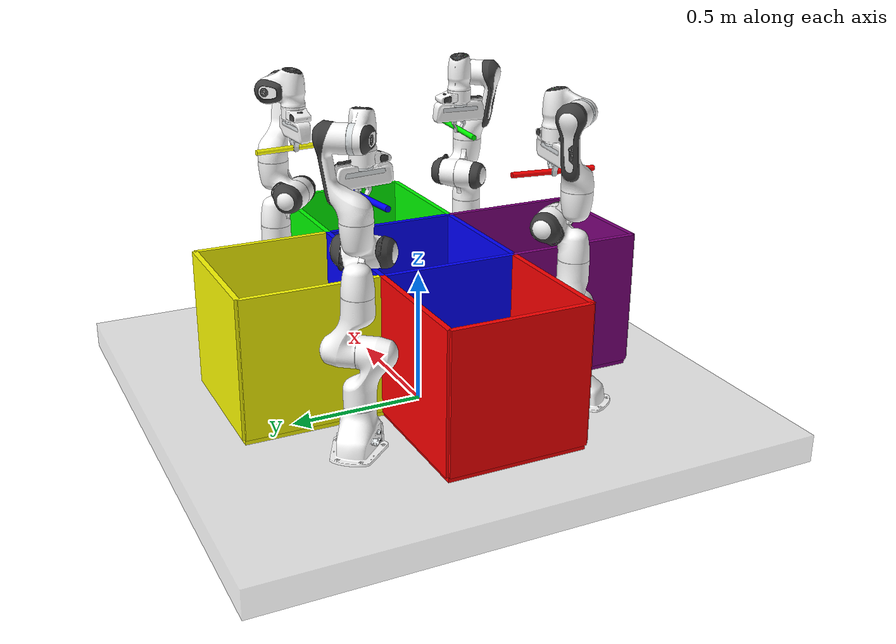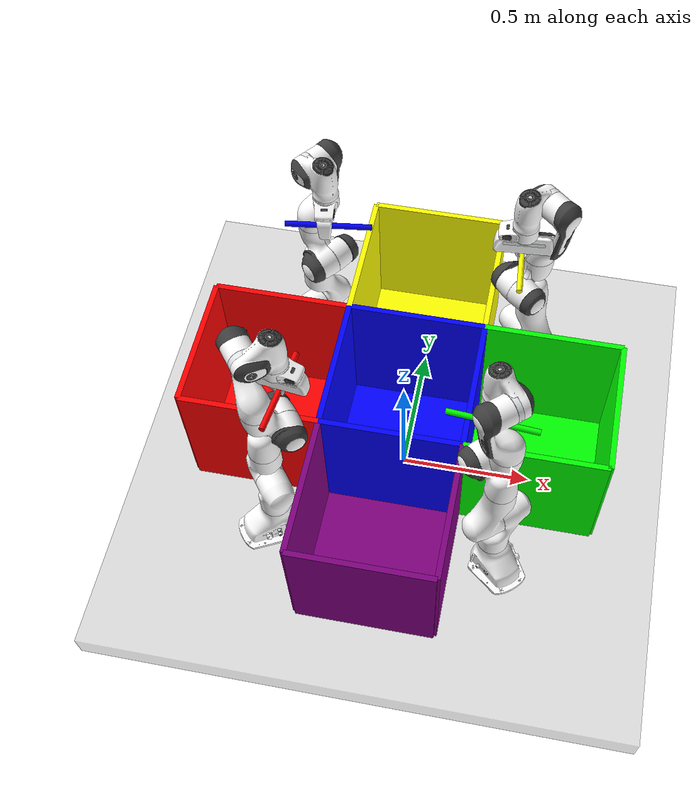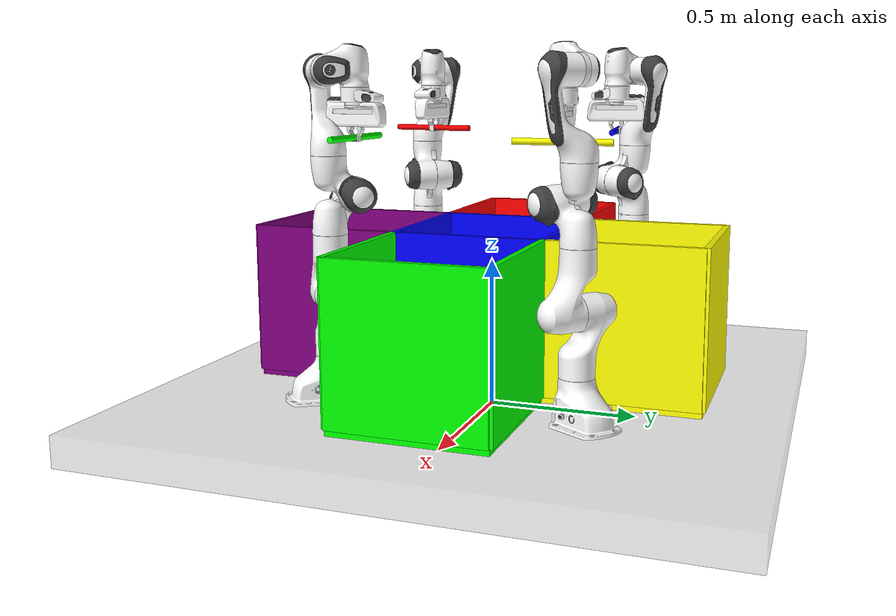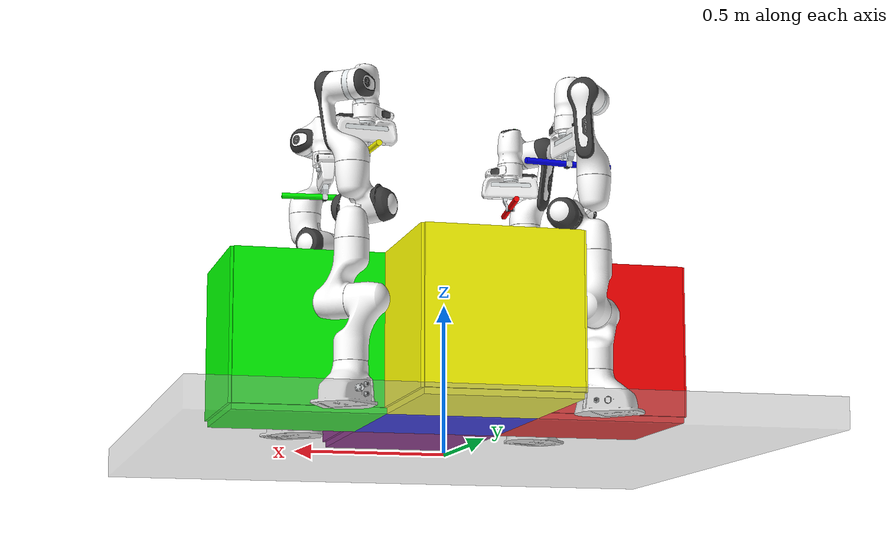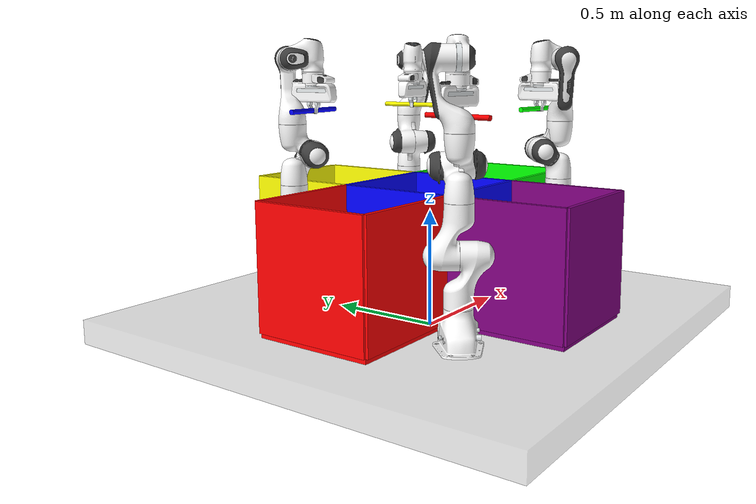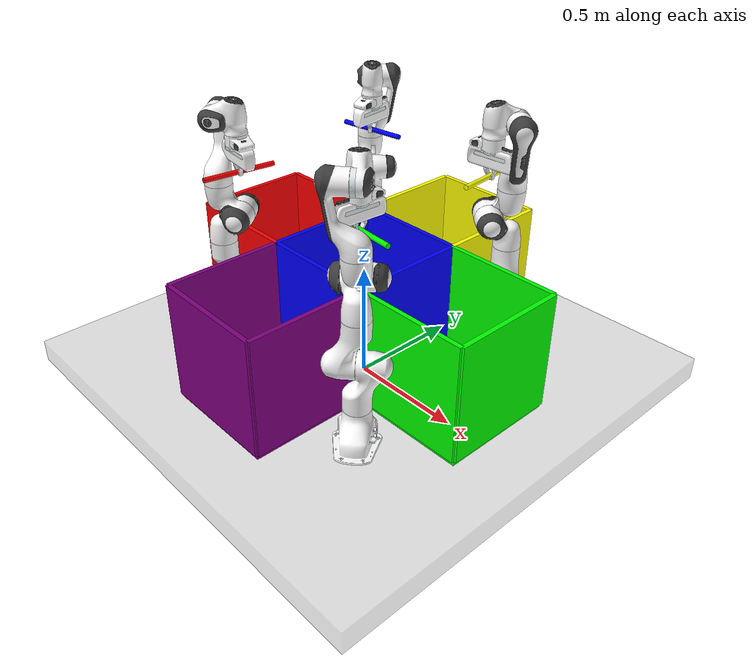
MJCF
<mujoco model="panda_four_bins">
  <compiler angle="radian" meshdir="assets" autolimits="true"/>

  <option integrator="implicitfast"/>

  <default>
    <default class="panda">
      <material specular="0.5" shininess="0.25"/>
      <joint armature="0.1" damping="1" axis="0 0 1" range="-2.8973 2.8973"/>
      <general dyntype="none" biastype="affine" ctrlrange="-2.8973 2.8973" forcerange="-87 87"/>
      <default class="finger">
        <joint axis="0 1 0" type="slide" range="0 0.04"/>
      </default>

      <default class="visual">
        <geom type="mesh" contype="0" conaffinity="0" group="2"/>
      </default>
      <default class="collision">
        <geom type="mesh" group="3"/>
        <default class="fingertip_pad_collision_1">
          <geom type="box" size="0.0085 0.004 0.0085" pos="0 0.0055 0.0445"/>
        </default>
        <default class="fingertip_pad_collision_2">
          <geom type="box" size="0.003 0.002 0.003" pos="0.0055 0.002 0.05"/>
        </default>
        <default class="fingertip_pad_collision_3">
          <geom type="box" size="0.003 0.002 0.003" pos="-0.0055 0.002 0.05"/>
        </default>
        <default class="fingertip_pad_collision_4">
          <geom type="box" size="0.003 0.002 0.0035" pos="0.0055 0.002 0.0395"/>
        </default>
        <default class="fingertip_pad_collision_5">
          <geom type="box" size="0.003 0.002 0.0035" pos="-0.0055 0.002 0.0395"/>
        </default>
      </default>
    </default>
  </default>

  <asset>
    <material class="panda" name="white" rgba="1 1 1 1"/>
    <material class="panda" name="off_white" rgba="0.901961 0.921569 0.929412 1"/>
    <material class="panda" name="black" rgba="0.25 0.25 0.25 1"/>
    <material class="panda" name="green" rgba="0 1 0 1"/>
    <material class="panda" name="light_blue" rgba="0.039216 0.541176 0.780392 1"/>

    <!-- Collision meshes -->
    <mesh name="link0_c" file="link0.stl"/>
    <mesh name="link1_c" file="link1.stl"/>
    <mesh name="link2_c" file="link2.stl"/>
    <mesh name="link3_c" file="link3.stl"/>
    <mesh name="link4_c" file="link4.stl"/>
    <mesh name="link5_c0" file="link5_collision_0.obj"/>
    <mesh name="link5_c1" file="link5_collision_1.obj"/>
    <mesh name="link5_c2" file="link5_collision_2.obj"/>
    <mesh name="link6_c" file="link6.stl"/>
    <mesh name="link7_c" file="link7.stl"/>
    <mesh name="hand_c" file="hand.stl"/>

    <!-- Visual meshes (list shortened to avoid duplication) -->
    <mesh file="link0_0.obj"/>
    <mesh file="link0_1.obj"/>
    <mesh file="link0_2.obj"/>
    <mesh file="link0_3.obj"/>
    <mesh file="link0_4.obj"/>
    <mesh file="link0_5.obj"/>
    <mesh file="link0_7.obj"/>
    <mesh file="link0_8.obj"/>
    <mesh file="link0_9.obj"/>
    <mesh file="link0_10.obj"/>
    <mesh file="link0_11.obj"/>
    <mesh file="link1.obj"/>
    <mesh file="link2.obj"/>
    <mesh file="link3_0.obj"/>
    <mesh file="link3_1.obj"/>
    <mesh file="link3_2.obj"/>
    <mesh file="link3_3.obj"/>
    <mesh file="link4_0.obj"/>
    <mesh file="link4_1.obj"/>
    <mesh file="link4_2.obj"/>
    <mesh file="link4_3.obj"/>
    <mesh file="link5_0.obj"/>
    <mesh file="link5_1.obj"/>
    <mesh file="link5_2.obj"/>
    <mesh file="link6_0.obj"/>
    <mesh file="link6_1.obj"/>
    <mesh file="link6_2.obj"/>
    <mesh file="link6_3.obj"/>
    <mesh file="link6_4.obj"/>
    <mesh file="link6_5.obj"/>
    <mesh file="link6_6.obj"/>
    <mesh file="link6_7.obj"/>
    <mesh file="link6_8.obj"/>
    <mesh file="link6_9.obj"/>
    <mesh file="link6_10.obj"/>
    <mesh file="link6_11.obj"/>
    <mesh file="link6_12.obj"/>
    <mesh file="link6_13.obj"/>
    <mesh file="link6_14.obj"/>
    <mesh file="link6_15.obj"/>
    <mesh file="link6_16.obj"/>
    <mesh file="link7_0.obj"/>
    <mesh file="link7_1.obj"/>
    <mesh file="link7_2.obj"/>
    <mesh file="link7_3.obj"/>
    <mesh file="link7_4.obj"/>
    <mesh file="link7_5.obj"/>
    <mesh file="link7_6.obj"/>
    <mesh file="link7_7.obj"/>
    <mesh file="hand_0.obj"/>
    <mesh file="hand_1.obj"/>
    <mesh file="hand_2.obj"/>
    <mesh file="hand_3.obj"/>
    <mesh file="hand_4.obj"/>
    <mesh file="finger_0.obj"/>
    <mesh file="finger_1.obj"/>
  </asset>

  <!-- We'll spawn four robot instances by copying only the body subtrees and giving each instance a unique prefix. -->

  <visual>
    <headlight diffuse="0.6 0.6 0.6" ambient="0.3 0.3 0.3" specular="0 0 0"/>
    <rgba haze="0.15 0.25 0.35 1"/>
    <global azimuth="120" elevation="-20"/>
  </visual>

  <worldbody>
    <light pos="0 0 2" mode="trackcom"/>

    <!-- Work surface and bins lifted directly from panda_four_binpick MoveIt scene -->
    <geom name="table" type="box" size="1 1 0.05" pos="0 0 0.05" rgba="0.7 0.7 0.7 0.4" friction="1 0.1 0.01"/>

    <!-- Helper macro from xacro expands into a bottom plate plus four sides; we mirror it explicitly here -->
    <body name="box1" pos="0 0 0.11">
      <geom name="box1_bottom" type="box" size="0.25 0.25 0.01" rgba="0 0 1 1"/>
      <geom name="box1_front" type="box" size="0.25 0.01 0.25" pos="0 0.25 0.26" rgba="0 0 1 1"/>
      <geom name="box1_back" type="box" size="0.25 0.01 0.25" pos="0 -0.25 0.26" rgba="0 0 1 1"/>
      <geom name="box1_left" type="box" size="0.01 0.25 0.25" pos="-0.25 0 0.26" rgba="0 0 1 1"/>
      <geom name="box1_right" type="box" size="0.01 0.25 0.25" pos="0.25 0 0.26" rgba="0 0 1 1"/>
    </body>
    <body name="box2" pos="0.5 0 0.11">
      <geom name="box2_bottom" type="box" size="0.25 0.25 0.01" rgba="0 1 0 1"/>
      <geom name="box2_front" type="box" size="0.25 0.01 0.25" pos="0 0.25 0.26" rgba="0 1 0 1"/>
      <geom name="box2_back" type="box" size="0.25 0.01 0.25" pos="0 -0.25 0.26" rgba="0 1 0 1"/>
      <geom name="box2_left" type="box" size="0.01 0.25 0.25" pos="-0.25 0 0.26" rgba="0 1 0 1"/>
      <geom name="box2_right" type="box" size="0.01 0.25 0.25" pos="0.25 0 0.26" rgba="0 1 0 1"/>
    </body>
    <body name="box3" pos="-0.5 0 0.11">
      <geom name="box3_bottom" type="box" size="0.25 0.25 0.01" rgba="1 0 0 1"/>
      <geom name="box3_front" type="box" size="0.25 0.01 0.25" pos="0 0.25 0.26" rgba="1 0 0 1"/>
      <geom name="box3_back" type="box" size="0.25 0.01 0.25" pos="0 -0.25 0.26" rgba="1 0 0 1"/>
      <geom name="box3_left" type="box" size="0.01 0.25 0.25" pos="-0.25 0 0.26" rgba="1 0 0 1"/>
      <geom name="box3_right" type="box" size="0.01 0.25 0.25" pos="0.25 0 0.26" rgba="1 0 0 1"/>
    </body>
    <body name="box4" pos="0 0.5 0.11">
      <geom name="box4_bottom" type="box" size="0.25 0.25 0.01" rgba="1 1 0 1"/>
      <geom name="box4_front" type="box" size="0.25 0.01 0.25" pos="0 0.25 0.26" rgba="1 1 0 1"/>
      <geom name="box4_back" type="box" size="0.25 0.01 0.25" pos="0 -0.25 0.26" rgba="1 1 0 1"/>
      <geom name="box4_left" type="box" size="0.01 0.25 0.25" pos="-0.25 0 0.26" rgba="1 1 0 1"/>
      <geom name="box4_right" type="box" size="0.01 0.25 0.25" pos="0.25 0 0.26" rgba="1 1 0 1"/>
    </body>
    <body name="box5" pos="0 -0.5 0.11">
      <geom name="box5_bottom" type="box" size="0.25 0.25 0.01" rgba="0.5 0 0.5 1"/>
      <geom name="box5_front" type="box" size="0.25 0.01 0.25" pos="0 0.25 0.26" rgba="0.5 0 0.5 1"/>
      <geom name="box5_back" type="box" size="0.25 0.01 0.25" pos="0 -0.25 0.26" rgba="0.5 0 0.5 1"/>
      <geom name="box5_left" type="box" size="0.01 0.25 0.25" pos="-0.25 0 0.26" rgba="0.5 0 0.5 1"/>
      <geom name="box5_right" type="box" size="0.01 0.25 0.25" pos="0.25 0 0.26" rgba="0.5 0 0.5 1"/>
    </body>

    <!-- Four Panda arms mounted on the corners of the central worktable -->
    <!-- panda1: MoveIt arm_id_0 at (0.4, -0.4, 0.1) yaw 2.28 rad -->
    <body name="panda1_link0" childclass="panda" pos="0.4 -0.4 0.1" quat="0.4175945 0 0 0.9086335">
      <inertial mass="0.629769" pos="-0.041018 -0.00014 0.049974" fullinertia="0.00315 0.00388 0.004285 8.2904e-7 0.00015 8.2299e-6"/>
      <geom mesh="link0_0" material="off_white" class="visual"/>
      <geom mesh="link0_1" material="black" class="visual"/>
      <geom mesh="link0_2" material="off_white" class="visual"/>
      <geom mesh="link0_3" material="black" class="visual"/>
      <geom mesh="link0_4" material="off_white" class="visual"/>
      <geom mesh="link0_5" material="black" class="visual"/>
      <geom mesh="link0_7" material="white" class="visual"/>
      <geom mesh="link0_8" material="white" class="visual"/>
      <geom mesh="link0_9" material="black" class="visual"/>
      <geom mesh="link0_10" material="off_white" class="visual"/>
      <geom mesh="link0_11" material="white" class="visual"/>
      <geom mesh="link0_c" class="collision"/>
      <body name="panda1_link1" pos="0 0 0.333">
        <inertial mass="4.970684" pos="0.003875 0.002081 -0.04762" fullinertia="0.70337 0.70661 0.0091170 -0.00013900 0.0067720 0.019169"/>
        <joint name="panda1_joint1"/>
        <geom material="white" mesh="link1" class="visual"/>
        <geom mesh="link1_c" class="collision"/>
        <body name="panda1_link2" quat="1 -1 0 0">
          <inertial mass="0.646926" pos="-0.003141 -0.02872 0.003495" fullinertia="0.0079620 2.8110e-2 2.5995e-2 -3.925e-3 1.0254e-2 7.04e-4"/>
          <joint name="panda1_joint2" range="-1.7628 1.7628"/>
          <geom material="white" mesh="link2" class="visual"/>
          <geom mesh="link2_c" class="collision"/>
          <body name="panda1_link3" pos="0 -0.316 0" quat="1 1 0 0">
            <joint name="panda1_joint3"/>
            <inertial mass="3.228604" pos="2.7518e-2 3.9252e-2 -6.6502e-2" fullinertia="3.7242e-2 3.6155e-2 1.083e-2 -4.761e-3 -1.1396e-2 -1.2805e-2"/>
            <geom mesh="link3_0" material="white" class="visual"/>
            <geom mesh="link3_1" material="white" class="visual"/>
            <geom mesh="link3_2" material="white" class="visual"/>
            <geom mesh="link3_3" material="black" class="visual"/>
            <geom mesh="link3_c" class="collision"/>
            <body name="panda1_link4" pos="0.0825 0 0" quat="1 1 0 0">
              <joint name="panda1_joint4" range="-3.0718 -0.0698"/>
              <inertial mass="3.587895" pos="-5.317e-2 1.04419e-1 2.7454e-2" fullinertia="2.5853e-2 1.9552e-2 2.8323e-2 7.796e-3 -1.332e-3 8.641e-3"/>
              <geom mesh="link4_0" material="white" class="visual"/>
              <geom mesh="link4_1" material="white" class="visual"/>
              <geom mesh="link4_2" material="black" class="visual"/>
              <geom mesh="link4_3" material="white" class="visual"/>
              <geom mesh="link4_c" class="collision"/>
              <body name="panda1_link5" pos="-0.0825 0.384 0" quat="1 -1 0 0">
                <joint name="panda1_joint5"/>
                <inertial mass="1.225946" pos="-1.1953e-2 4.1065e-2 -3.8437e-2" fullinertia="3.5549e-2 2.9474e-2 8.627e-3 -2.117e-3 -4.037e-3 2.29e-4"/>
                <geom mesh="link5_0" material="black" class="visual"/>
                <geom mesh="link5_1" material="white" class="visual"/>
                <geom mesh="link5_2" material="white" class="visual"/>
                <geom mesh="link5_c0" class="collision"/>
                <geom mesh="link5_c1" class="collision"/>
                <geom mesh="link5_c2" class="collision"/>
                <body name="panda1_link6" quat="1 1 0 0">
                  <joint name="panda1_joint6" range="-0.0175 3.7525"/>
                  <inertial mass="1.666555" pos="6.0149e-2 -1.4117e-2 -1.0517e-2" fullinertia="1.964e-3 4.354e-3 5.433e-3 1.09e-4 -1.158e-3 3.41e-4"/>
                  <geom mesh="link6_0" material="off_white" class="visual"/>
                  <geom mesh="link6_1" material="white" class="visual"/>
                  <geom mesh="link6_2" material="black" class="visual"/>
                  <geom mesh="link6_3" material="white" class="visual"/>
                  <geom mesh="link6_4" material="white" class="visual"/>
                  <geom mesh="link6_5" material="white" class="visual"/>
                  <geom mesh="link6_6" material="white" class="visual"/>
                  <geom mesh="link6_7" material="light_blue" class="visual"/>
                  <geom mesh="link6_8" material="light_blue" class="visual"/>
                  <geom mesh="link6_9" material="black" class="visual"/>
                  <geom mesh="link6_10" material="black" class="visual"/>
                  <geom mesh="link6_11" material="white" class="visual"/>
                  <geom mesh="link6_12" material="green" class="visual"/>
                  <geom mesh="link6_13" material="white" class="visual"/>
                  <geom mesh="link6_14" material="black" class="visual"/>
                  <geom mesh="link6_15" material="black" class="visual"/>
                  <geom mesh="link6_16" material="white" class="visual"/>
                  <geom mesh="link6_c" class="collision"/>
                  <body name="panda1_link7" pos="0.088 0 0" quat="1 1 0 0">
                    <joint name="panda1_joint7"/>
                    <inertial mass="7.35522e-01" pos="1.0517e-2 -4.252e-3 6.1597e-2" fullinertia="1.2516e-2 1.0027e-2 4.815e-3 -4.28e-4 -1.196e-3 -7.41e-4"/>
                    <geom mesh="link7_0" material="white" class="visual"/>
                    <geom mesh="link7_1" material="black" class="visual"/>
                    <geom mesh="link7_2" material="black" class="visual"/>
                    <geom mesh="link7_3" material="black" class="visual"/>
                    <geom mesh="link7_4" material="black" class="visual"/>
                    <geom mesh="link7_5" material="black" class="visual"/>
                    <geom mesh="link7_6" material="black" class="visual"/>
                    <geom mesh="link7_7" material="white" class="visual"/>
                    <geom mesh="link7_c" class="collision"/>
                    <body name="panda1_hand" pos="0 0 0.107" quat="0.9238795 0 0 -0.3826834">
                      <inertial mass="0.73" pos="-0.01 0 0.03" diaginertia="0.001 0.0025 0.0017"/>
                      <geom mesh="hand_0" material="off_white" class="visual"/>
                      <geom mesh="hand_1" material="black" class="visual"/>
                      <geom mesh="hand_2" material="black" class="visual"/>
                      <geom mesh="hand_3" material="white" class="visual"/>
                      <geom mesh="hand_4" material="off_white" class="visual"/>
                      <geom mesh="hand_c" class="collision"/>
                      <body name="panda1_left_finger" pos="0 0 0.0584">
                        <inertial mass="0.015" pos="0 0 0" diaginertia="2.375e-6 2.375e-6 7.5e-7"/>
                        <joint name="panda1_finger_joint1" class="finger"/>
                        <geom mesh="finger_0" material="off_white" class="visual"/>
                        <geom mesh="finger_1" material="black" class="visual"/>
                        <geom mesh="finger_0" class="collision"/>
                        <geom class="fingertip_pad_collision_1"/>
                        <geom class="fingertip_pad_collision_2"/>
                        <geom class="fingertip_pad_collision_3"/>
                        <geom class="fingertip_pad_collision_4"/>
                        <geom class="fingertip_pad_collision_5"/>
                      </body>
                      <body name="panda1_right_finger" pos="0 0 0.0584" quat="0 0 0 1">
                        <inertial mass="0.015" pos="0 0 0" diaginertia="2.375e-6 2.375e-6 7.5e-7"/>
                        <joint name="panda1_finger_joint2" class="finger"/>
                        <geom mesh="finger_0" material="off_white" class="visual"/>
                        <geom mesh="finger_1" material="black" class="visual"/>
                        <geom mesh="finger_0" class="collision"/>
                        <geom class="fingertip_pad_collision_1"/>
                        <geom class="fingertip_pad_collision_2"/>
                        <geom class="fingertip_pad_collision_3"/>
                        <geom class="fingertip_pad_collision_4"/>
                        <geom class="fingertip_pad_collision_5"/>
                      </body>
                      <body name="panda1_rod" pos="0 0 0.1" quat="0.7071068 0 0.7071068 0">
                        <geom name="panda1_rod_geom" type="cylinder" size="0.01 0.15" rgba="0 1 0 1"/>
                      </body>
                    </body>
                  </body>
                </body>
              </body>
            </body>
          </body>
        </body>
      </body>
    </body>

    <!-- panda2: MoveIt arm_id_1 at (-0.4, -0.4, 0.1) yaw 0.66 rad -->
    <body name="panda2_link0" childclass="panda" pos="-0.4 -0.4 0.1" quat="0.9460423 0 0 0.3240430">
      <inertial mass="0.629769" pos="-0.041018 -0.00014 0.049974" fullinertia="0.00315 0.00388 0.004285 8.2904e-7 0.00015 8.2299e-6"/>
      <geom mesh="link0_0" material="off_white" class="visual"/>
      <geom mesh="link0_1" material="black" class="visual"/>
      <geom mesh="link0_2" material="off_white" class="visual"/>
      <geom mesh="link0_3" material="black" class="visual"/>
      <geom mesh="link0_4" material="off_white" class="visual"/>
      <geom mesh="link0_5" material="black" class="visual"/>
      <geom mesh="link0_7" material="white" class="visual"/>
      <geom mesh="link0_8" material="white" class="visual"/>
      <geom mesh="link0_9" material="black" class="visual"/>
      <geom mesh="link0_10" material="off_white" class="visual"/>
      <geom mesh="link0_11" material="white" class="visual"/>
      <geom mesh="link0_c" class="collision"/>
      <body name="panda2_link1" pos="0 0 0.333">
        <inertial mass="4.970684" pos="0.003875 0.002081 -0.04762" fullinertia="0.70337 0.70661 0.0091170 -0.00013900 0.0067720 0.019169"/>
        <joint name="panda2_joint1"/>
        <geom material="white" mesh="link1" class="visual"/>
        <geom mesh="link1_c" class="collision"/>
        <body name="panda2_link2" quat="1 -1 0 0">
          <inertial mass="0.646926" pos="-0.003141 -0.02872 0.003495" fullinertia="0.0079620 2.8110e-2 2.5995e-2 -3.925e-3 1.0254e-2 7.04e-4"/>
          <joint name="panda2_joint2" range="-1.7628 1.7628"/>
          <geom material="white" mesh="link2" class="visual"/>
          <geom mesh="link2_c" class="collision"/>
          <body name="panda2_link3" pos="0 -0.316 0" quat="1 1 0 0">
            <joint name="panda2_joint3"/>
            <inertial mass="3.228604" pos="2.7518e-2 3.9252e-2 -6.6502e-2" fullinertia="3.7242e-2 3.6155e-2 1.083e-2 -4.761e-3 -1.1396e-2 -1.2805e-2"/>
            <geom mesh="link3_0" material="white" class="visual"/>
            <geom mesh="link3_1" material="white" class="visual"/>
            <geom mesh="link3_2" material="white" class="visual"/>
            <geom mesh="link3_3" material="black" class="visual"/>
            <geom mesh="link3_c" class="collision"/>
            <body name="panda2_link4" pos="0.0825 0 0" quat="1 1 0 0">
              <joint name="panda2_joint4" range="-3.0718 -0.0698"/>
              <inertial mass="3.587895" pos="-5.317e-2 1.04419e-1 2.7454e-2" fullinertia="2.5853e-2 1.9552e-2 2.8323e-2 7.796e-3 -1.332e-3 8.641e-3"/>
              <geom mesh="link4_0" material="white" class="visual"/>
              <geom mesh="link4_1" material="white" class="visual"/>
              <geom mesh="link4_2" material="black" class="visual"/>
              <geom mesh="link4_3" material="white" class="visual"/>
              <geom mesh="link4_c" class="collision"/>
              <body name="panda2_link5" pos="-0.0825 0.384 0" quat="1 -1 0 0">
                <joint name="panda2_joint5"/>
                <inertial mass="1.225946" pos="-1.1953e-2 4.1065e-2 -3.8437e-2" fullinertia="3.5549e-2 2.9474e-2 8.627e-3 -2.117e-3 -4.037e-3 2.29e-4"/>
                <geom mesh="link5_0" material="black" class="visual"/>
                <geom mesh="link5_1" material="white" class="visual"/>
                <geom mesh="link5_2" material="white" class="visual"/>
                <geom mesh="link5_c0" class="collision"/>
                <geom mesh="link5_c1" class="collision"/>
                <geom mesh="link5_c2" class="collision"/>
                <body name="panda2_link6" quat="1 1 0 0">
                  <joint name="panda2_joint6" range="-0.0175 3.7525"/>
                  <inertial mass="1.666555" pos="6.0149e-2 -1.4117e-2 -1.0517e-2" fullinertia="1.964e-3 4.354e-3 5.433e-3 1.09e-4 -1.158e-3 3.41e-4"/>
                  <geom mesh="link6_0" material="off_white" class="visual"/>
                  <geom mesh="link6_1" material="white" class="visual"/>
                  <geom mesh="link6_2" material="black" class="visual"/>
                  <geom mesh="link6_3" material="white" class="visual"/>
                  <geom mesh="link6_4" material="white" class="visual"/>
                  <geom mesh="link6_5" material="white" class="visual"/>
                  <geom mesh="link6_6" material="white" class="visual"/>
                  <geom mesh="link6_7" material="light_blue" class="visual"/>
                  <geom mesh="link6_8" material="light_blue" class="visual"/>
                  <geom mesh="link6_9" material="black" class="visual"/>
                  <geom mesh="link6_10" material="black" class="visual"/>
                  <geom mesh="link6_11" material="white" class="visual"/>
                  <geom mesh="link6_12" material="green" class="visual"/>
                  <geom mesh="link6_13" material="white" class="visual"/>
                  <geom mesh="link6_14" material="black" class="visual"/>
                  <geom mesh="link6_15" material="black" class="visual"/>
                  <geom mesh="link6_16" material="white" class="visual"/>
                  <geom mesh="link6_c" class="collision"/>
                  <body name="panda2_link7" pos="0.088 0 0" quat="1 1 0 0">
                    <joint name="panda2_joint7"/>
                    <inertial mass="7.35522e-01" pos="1.0517e-2 -4.252e-3 6.1597e-2" fullinertia="1.2516e-2 1.0027e-2 4.815e-3 -4.28e-4 -1.196e-3 -7.41e-4"/>
                    <geom mesh="link7_0" material="white" class="visual"/>
                    <geom mesh="link7_1" material="black" class="visual"/>
                    <geom mesh="link7_2" material="black" class="visual"/>
                    <geom mesh="link7_3" material="black" class="visual"/>
                    <geom mesh="link7_4" material="black" class="visual"/>
                    <geom mesh="link7_5" material="black" class="visual"/>
                    <geom mesh="link7_6" material="black" class="visual"/>
                    <geom mesh="link7_7" material="white" class="visual"/>
                    <geom mesh="link7_c" class="collision"/>
                    <body name="panda2_hand" pos="0 0 0.107" quat="0.9238795 0 0 -0.3826834">
                      <inertial mass="0.73" pos="-0.01 0 0.03" diaginertia="0.001 0.0025 0.0017"/>
                      <geom mesh="hand_0" material="off_white" class="visual"/>
                      <geom mesh="hand_1" material="black" class="visual"/>
                      <geom mesh="hand_2" material="black" class="visual"/>
                      <geom mesh="hand_3" material="white" class="visual"/>
                      <geom mesh="hand_4" material="off_white" class="visual"/>
                      <geom mesh="hand_c" class="collision"/>
                      <body name="panda2_left_finger" pos="0 0 0.0584">
                        <inertial mass="0.015" pos="0 0 0" diaginertia="2.375e-6 2.375e-6 7.5e-7"/>
                        <joint name="panda2_finger_joint1" class="finger"/>
                        <geom mesh="finger_0" material="off_white" class="visual"/>
                        <geom mesh="finger_1" material="black" class="visual"/>
                        <geom mesh="finger_0" class="collision"/>
                        <geom class="fingertip_pad_collision_1"/>
                        <geom class="fingertip_pad_collision_2"/>
                        <geom class="fingertip_pad_collision_3"/>
                        <geom class="fingertip_pad_collision_4"/>
                        <geom class="fingertip_pad_collision_5"/>
                      </body>
                      <body name="panda2_right_finger" pos="0 0 0.0584" quat="0 0 0 1">
                        <inertial mass="0.015" pos="0 0 0" diaginertia="2.375e-6 2.375e-6 7.5e-7"/>
                        <joint name="panda2_finger_joint2" class="finger"/>
                        <geom mesh="finger_0" material="off_white" class="visual"/>
                        <geom mesh="finger_1" material="black" class="visual"/>
                        <geom mesh="finger_0" class="collision"/>
                        <geom class="fingertip_pad_collision_1"/>
                        <geom class="fingertip_pad_collision_2"/>
                        <geom class="fingertip_pad_collision_3"/>
                        <geom class="fingertip_pad_collision_4"/>
                        <geom class="fingertip_pad_collision_5"/>
                      </body>
                      <body name="panda2_rod" pos="0 0 0.1" quat="0.7071068 0 0.7071068 0">
                        <geom name="panda2_rod_geom" type="cylinder" size="0.01 0.15" rgba="1 0 0 1"/>
                      </body>
                    </body>
                  </body>
                </body>
              </body>
            </body>
          </body>
        </body>
      </body>
    </body>

    <!-- panda3: MoveIt arm_id_2 at (-0.4, 0.4, 0.1) yaw -0.66 rad -->
    <body name="panda3_link0" childclass="panda" pos="-0.4 0.4 0.1" quat="0.9460423 0 0 -0.3240430">
      <inertial mass="0.629769" pos="-0.041018 -0.00014 0.049974" fullinertia="0.00315 0.00388 0.004285 8.2904e-7 0.00015 8.2299e-6"/>
      <geom mesh="link0_0" material="off_white" class="visual"/>
      <geom mesh="link0_1" material="black" class="visual"/>
      <geom mesh="link0_2" material="off_white" class="visual"/>
      <geom mesh="link0_3" material="black" class="visual"/>
      <geom mesh="link0_4" material="off_white" class="visual"/>
      <geom mesh="link0_5" material="black" class="visual"/>
      <geom mesh="link0_7" material="white" class="visual"/>
      <geom mesh="link0_8" material="white" class="visual"/>
      <geom mesh="link0_9" material="black" class="visual"/>
      <geom mesh="link0_10" material="off_white" class="visual"/>
      <geom mesh="link0_11" material="white" class="visual"/>
      <geom mesh="link0_c" class="collision"/>
      <body name="panda3_link1" pos="0 0 0.333">
        <inertial mass="4.970684" pos="0.003875 0.002081 -0.04762" fullinertia="0.70337 0.70661 0.0091170 -0.00013900 0.0067720 0.019169"/>
        <joint name="panda3_joint1"/>
        <geom material="white" mesh="link1" class="visual"/>
        <geom mesh="link1_c" class="collision"/>
        <body name="panda3_link2" quat="1 -1 0 0">
          <inertial mass="0.646926" pos="-0.003141 -0.02872 0.003495" fullinertia="0.0079620 2.8110e-2 2.5995e-2 -3.925e-3 1.0254e-2 7.04e-4"/>
          <joint name="panda3_joint2" range="-1.7628 1.7628"/>
          <geom material="white" mesh="link2" class="visual"/>
          <geom mesh="link2_c" class="collision"/>
          <body name="panda3_link3" pos="0 -0.316 0" quat="1 1 0 0">
            <joint name="panda3_joint3"/>
            <inertial mass="3.228604" pos="2.7518e-2 3.9252e-2 -6.6502e-2" fullinertia="3.7242e-2 3.6155e-2 1.083e-2 -4.761e-3 -1.1396e-2 -1.2805e-2"/>
            <geom mesh="link3_0" material="white" class="visual"/>
            <geom mesh="link3_1" material="white" class="visual"/>
            <geom mesh="link3_2" material="white" class="visual"/>
            <geom mesh="link3_3" material="black" class="visual"/>
            <geom mesh="link3_c" class="collision"/>
            <body name="panda3_link4" pos="0.0825 0 0" quat="1 1 0 0">
              <joint name="panda3_joint4" range="-3.0718 -0.0698"/>
              <inertial mass="3.587895" pos="-5.317e-2 1.04419e-1 2.7454e-2" fullinertia="2.5853e-2 1.9552e-2 2.8323e-2 7.796e-3 -1.332e-3 8.641e-3"/>
              <geom mesh="link4_0" material="white" class="visual"/>
              <geom mesh="link4_1" material="white" class="visual"/>
              <geom mesh="link4_2" material="black" class="visual"/>
              <geom mesh="link4_3" material="white" class="visual"/>
              <geom mesh="link4_c" class="collision"/>
              <body name="panda3_link5" pos="-0.0825 0.384 0" quat="1 -1 0 0">
                <joint name="panda3_joint5"/>
                <inertial mass="1.225946" pos="-1.1953e-2 4.1065e-2 -3.8437e-2" fullinertia="3.5549e-2 2.9474e-2 8.627e-3 -2.117e-3 -4.037e-3 2.29e-4"/>
                <geom mesh="link5_0" material="black" class="visual"/>
                <geom mesh="link5_1" material="white" class="visual"/>
                <geom mesh="link5_2" material="white" class="visual"/>
                <geom mesh="link5_c0" class="collision"/>
                <geom mesh="link5_c1" class="collision"/>
                <geom mesh="link5_c2" class="collision"/>
                <body name="panda3_link6" quat="1 1 0 0">
                  <joint name="panda3_joint6" range="-0.0175 3.7525"/>
                  <inertial mass="1.666555" pos="6.0149e-2 -1.4117e-2 -1.0517e-2" fullinertia="1.964e-3 4.354e-3 5.433e-3 1.09e-4 -1.158e-3 3.41e-4"/>
                  <geom mesh="link6_0" material="off_white" class="visual"/>
                  <geom mesh="link6_1" material="white" class="visual"/>
                  <geom mesh="link6_2" material="black" class="visual"/>
                  <geom mesh="link6_3" material="white" class="visual"/>
                  <geom mesh="link6_4" material="white" class="visual"/>
                  <geom mesh="link6_5" material="white" class="visual"/>
                  <geom mesh="link6_6" material="white" class="visual"/>
                  <geom mesh="link6_7" material="light_blue" class="visual"/>
                  <geom mesh="link6_8" material="light_blue" class="visual"/>
                  <geom mesh="link6_9" material="black" class="visual"/>
                  <geom mesh="link6_10" material="black" class="visual"/>
                  <geom mesh="link6_11" material="white" class="visual"/>
                  <geom mesh="link6_12" material="green" class="visual"/>
                  <geom mesh="link6_13" material="white" class="visual"/>
                  <geom mesh="link6_14" material="black" class="visual"/>
                  <geom mesh="link6_15" material="black" class="visual"/>
                  <geom mesh="link6_16" material="white" class="visual"/>
                  <geom mesh="link6_c" class="collision"/>
                  <body name="panda3_link7" pos="0.088 0 0" quat="1 1 0 0">
                    <joint name="panda3_joint7"/>
                    <inertial mass="7.35522e-01" pos="1.0517e-2 -4.252e-3 6.1597e-2" fullinertia="1.2516e-2 1.0027e-2 4.815e-3 -4.28e-4 -1.196e-3 -7.41e-4"/>
                    <geom mesh="link7_0" material="white" class="visual"/>
                    <geom mesh="link7_1" material="black" class="visual"/>
                    <geom mesh="link7_2" material="black" class="visual"/>
                    <geom mesh="link7_3" material="black" class="visual"/>
                    <geom mesh="link7_4" material="black" class="visual"/>
                    <geom mesh="link7_5" material="black" class="visual"/>
                    <geom mesh="link7_6" material="black" class="visual"/>
                    <geom mesh="link7_7" material="white" class="visual"/>
                    <geom mesh="link7_c" class="collision"/>
                    <body name="panda3_hand" pos="0 0 0.107" quat="0.9238795 0 0 -0.3826834">
                      <inertial mass="0.73" pos="-0.01 0 0.03" diaginertia="0.001 0.0025 0.0017"/>
                      <geom mesh="hand_0" material="off_white" class="visual"/>
                      <geom mesh="hand_1" material="black" class="visual"/>
                      <geom mesh="hand_2" material="black" class="visual"/>
                      <geom mesh="hand_3" material="white" class="visual"/>
                      <geom mesh="hand_4" material="off_white" class="visual"/>
                      <geom mesh="hand_c" class="collision"/>
                      <body name="panda3_left_finger" pos="0 0 0.0584">
                        <inertial mass="0.015" pos="0 0 0" diaginertia="2.375e-6 2.375e-6 7.5e-7"/>
                        <joint name="panda3_finger_joint1" class="finger"/>
                        <geom mesh="finger_0" material="off_white" class="visual"/>
                        <geom mesh="finger_1" material="black" class="visual"/>
                        <geom mesh="finger_0" class="collision"/>
                        <geom class="fingertip_pad_collision_1"/>
                        <geom class="fingertip_pad_collision_2"/>
                        <geom class="fingertip_pad_collision_3"/>
                        <geom class="fingertip_pad_collision_4"/>
                        <geom class="fingertip_pad_collision_5"/>
                      </body>
                      <body name="panda3_right_finger" pos="0 0 0.0584" quat="0 0 0 1">
                        <inertial mass="0.015" pos="0 0 0" diaginertia="2.375e-6 2.375e-6 7.5e-7"/>
                        <joint name="panda3_finger_joint2" class="finger"/>
                        <geom mesh="finger_0" material="off_white" class="visual"/>
                        <geom mesh="finger_1" material="black" class="visual"/>
                        <geom mesh="finger_0" class="collision"/>
                        <geom class="fingertip_pad_collision_1"/>
                        <geom class="fingertip_pad_collision_2"/>
                        <geom class="fingertip_pad_collision_3"/>
                        <geom class="fingertip_pad_collision_4"/>
                        <geom class="fingertip_pad_collision_5"/>
                      </body>
                      <body name="panda3_rod" pos="0 0 0.1" quat="0.7071068 0 0.7071068 0">
                        <geom name="panda3_rod_geom" type="cylinder" size="0.01 0.15" rgba="0 0 1 1"/>
                      </body>
                    </body>
                  </body>
                </body>
              </body>
            </body>
          </body>
        </body>
      </body>
    </body>

    <!-- panda4: MoveIt arm_id_3 at (0.4, 0.4, 0.1) yaw -2.28 rad -->
    <body name="panda4_link0" childclass="panda" pos="0.4 0.4 0.1" quat="0.4175945 0 0 -0.9086335">
      <inertial mass="0.629769" pos="-0.041018 -0.00014 0.049974" fullinertia="0.00315 0.00388 0.004285 8.2904e-7 0.00015 8.2299e-6"/>
      <geom mesh="link0_0" material="off_white" class="visual"/>
      <geom mesh="link0_1" material="black" class="visual"/>
      <geom mesh="link0_2" material="off_white" class="visual"/>
      <geom mesh="link0_3" material="black" class="visual"/>
      <geom mesh="link0_4" material="off_white" class="visual"/>
      <geom mesh="link0_5" material="black" class="visual"/>
      <geom mesh="link0_7" material="white" class="visual"/>
      <geom mesh="link0_8" material="white" class="visual"/>
      <geom mesh="link0_9" material="black" class="visual"/>
      <geom mesh="link0_10" material="off_white" class="visual"/>
      <geom mesh="link0_11" material="white" class="visual"/>
      <geom mesh="link0_c" class="collision"/>
      <body name="panda4_link1" pos="0 0 0.333">
        <inertial mass="4.970684" pos="0.003875 0.002081 -0.04762" fullinertia="0.70337 0.70661 0.0091170 -0.00013900 0.0067720 0.019169"/>
        <joint name="panda4_joint1"/>
        <geom material="white" mesh="link1" class="visual"/>
        <geom mesh="link1_c" class="collision"/>
        <body name="panda4_link2" quat="1 -1 0 0">
          <inertial mass="0.646926" pos="-0.003141 -0.02872 0.003495" fullinertia="0.0079620 2.8110e-2 2.5995e-2 -3.925e-3 1.0254e-2 7.04e-4"/>
          <joint name="panda4_joint2" range="-1.7628 1.7628"/>
          <geom material="white" mesh="link2" class="visual"/>
          <geom mesh="link2_c" class="collision"/>
          <body name="panda4_link3" pos="0 -0.316 0" quat="1 1 0 0">
            <joint name="panda4_joint3"/>
            <inertial mass="3.228604" pos="2.7518e-2 3.9252e-2 -6.6502e-2" fullinertia="3.7242e-2 3.6155e-2 1.083e-2 -4.761e-3 -1.1396e-2 -1.2805e-2"/>
            <geom mesh="link3_0" material="white" class="visual"/>
            <geom mesh="link3_1" material="white" class="visual"/>
            <geom mesh="link3_2" material="white" class="visual"/>
            <geom mesh="link3_3" material="black" class="visual"/>
            <geom mesh="link3_c" class="collision"/>
            <body name="panda4_link4" pos="0.0825 0 0" quat="1 1 0 0">
              <joint name="panda4_joint4" range="-3.0718 -0.0698"/>
              <inertial mass="3.587895" pos="-5.317e-2 1.04419e-1 2.7454e-2" fullinertia="2.5853e-2 1.9552e-2 2.8323e-2 7.796e-3 -1.332e-3 8.641e-3"/>
              <geom mesh="link4_0" material="white" class="visual"/>
              <geom mesh="link4_1" material="white" class="visual"/>
              <geom mesh="link4_2" material="black" class="visual"/>
              <geom mesh="link4_3" material="white" class="visual"/>
              <geom mesh="link4_c" class="collision"/>
              <body name="panda4_link5" pos="-0.0825 0.384 0" quat="1 -1 0 0">
                <joint name="panda4_joint5"/>
                <inertial mass="1.225946" pos="-1.1953e-2 4.1065e-2 -3.8437e-2" fullinertia="3.5549e-2 2.9474e-2 8.627e-3 -2.117e-3 -4.037e-3 2.29e-4"/>
                <geom mesh="link5_0" material="black" class="visual"/>
                <geom mesh="link5_1" material="white" class="visual"/>
                <geom mesh="link5_2" material="white" class="visual"/>
                <geom mesh="link5_c0" class="collision"/>
                <geom mesh="link5_c1" class="collision"/>
                <geom mesh="link5_c2" class="collision"/>
                <body name="panda4_link6" quat="1 1 0 0">
                  <joint name="panda4_joint6" range="-0.0175 3.7525"/>
                  <inertial mass="1.666555" pos="6.0149e-2 -1.4117e-2 -1.0517e-2" fullinertia="1.964e-3 4.354e-3 5.433e-3 1.09e-4 -1.158e-3 3.41e-4"/>
                  <geom mesh="link6_0" material="off_white" class="visual"/>
                  <geom mesh="link6_1" material="white" class="visual"/>
                  <geom mesh="link6_2" material="black" class="visual"/>
                  <geom mesh="link6_3" material="white" class="visual"/>
                  <geom mesh="link6_4" material="white" class="visual"/>
                  <geom mesh="link6_5" material="white" class="visual"/>
                  <geom mesh="link6_6" material="white" class="visual"/>
                  <geom mesh="link6_7" material="light_blue" class="visual"/>
                  <geom mesh="link6_8" material="light_blue" class="visual"/>
                  <geom mesh="link6_9" material="black" class="visual"/>
                  <geom mesh="link6_10" material="black" class="visual"/>
                  <geom mesh="link6_11" material="white" class="visual"/>
                  <geom mesh="link6_12" material="green" class="visual"/>
                  <geom mesh="link6_13" material="white" class="visual"/>
                  <geom mesh="link6_14" material="black" class="visual"/>
                  <geom mesh="link6_15" material="black" class="visual"/>
                  <geom mesh="link6_16" material="white" class="visual"/>
                  <geom mesh="link6_c" class="collision"/>
                  <body name="panda4_link7" pos="0.088 0 0" quat="1 1 0 0">
                    <joint name="panda4_joint7"/>
                    <inertial mass="7.35522e-01" pos="1.0517e-2 -4.252e-3 6.1597e-2" fullinertia="1.2516e-2 1.0027e-2 4.815e-3 -4.28e-4 -1.196e-3 -7.41e-4"/>
                    <geom mesh="link7_0" material="white" class="visual"/>
                    <geom mesh="link7_1" material="black" class="visual"/>
                    <geom mesh="link7_2" material="black" class="visual"/>
                    <geom mesh="link7_3" material="black" class="visual"/>
                    <geom mesh="link7_4" material="black" class="visual"/>
                    <geom mesh="link7_5" material="black" class="visual"/>
                    <geom mesh="link7_6" material="black" class="visual"/>
                    <geom mesh="link7_7" material="white" class="visual"/>
                    <geom mesh="link7_c" class="collision"/>
                    <body name="panda4_hand" pos="0 0 0.107" quat="0.9238795 0 0 -0.3826834">
                      <inertial mass="0.73" pos="-0.01 0 0.03" diaginertia="0.001 0.0025 0.0017"/>
                      <geom mesh="hand_0" material="off_white" class="visual"/>
                      <geom mesh="hand_1" material="black" class="visual"/>
                      <geom mesh="hand_2" material="black" class="visual"/>
                      <geom mesh="hand_3" material="white" class="visual"/>
                      <geom mesh="hand_4" material="off_white" class="visual"/>
                      <geom mesh="hand_c" class="collision"/>
                      <body name="panda4_left_finger" pos="0 0 0.0584">
                        <inertial mass="0.015" pos="0 0 0" diaginertia="2.375e-6 2.375e-6 7.5e-7"/>
                        <joint name="panda4_finger_joint1" class="finger"/>
                        <geom mesh="finger_0" material="off_white" class="visual"/>
                        <geom mesh="finger_1" material="black" class="visual"/>
                        <geom mesh="finger_0" class="collision"/>
                        <geom class="fingertip_pad_collision_1"/>
                        <geom class="fingertip_pad_collision_2"/>
                        <geom class="fingertip_pad_collision_3"/>
                        <geom class="fingertip_pad_collision_4"/>
                        <geom class="fingertip_pad_collision_5"/>
                      </body>
                      <body name="panda4_right_finger" pos="0 0 0.0584" quat="0 0 0 1">
                        <inertial mass="0.015" pos="0 0 0" diaginertia="2.375e-6 2.375e-6 7.5e-7"/>
                        <joint name="panda4_finger_joint2" class="finger"/>
                        <geom mesh="finger_0" material="off_white" class="visual"/>
                        <geom mesh="finger_1" material="black" class="visual"/>
                        <geom mesh="finger_0" class="collision"/>
                        <geom class="fingertip_pad_collision_1"/>
                        <geom class="fingertip_pad_collision_2"/>
                        <geom class="fingertip_pad_collision_3"/>
                        <geom class="fingertip_pad_collision_4"/>
                        <geom class="fingertip_pad_collision_5"/>
                      </body>
                      <body name="panda4_rod" pos="0 0 0.1" quat="0.7071068 0 0.7071068 0">
                        <geom name="panda4_rod_geom" type="cylinder" size="0.01 0.15" rgba="1 1 0 1"/>
                      </body>
                    </body>
                  </body>
                </body>
              </body>
            </body>
          </body>
        </body>
      </body>
    </body>

  </worldbody>

  <!-- Actuators/tendons/equalities for each instance -->
  <tendon>
    <fixed name="panda1_split">
      <joint joint="panda1_finger_joint1" coef="0.5"/>
      <joint joint="panda1_finger_joint2" coef="0.5"/>
    </fixed>
    <fixed name="panda2_split">
      <joint joint="panda2_finger_joint1" coef="0.5"/>
      <joint joint="panda2_finger_joint2" coef="0.5"/>
    </fixed>
    <fixed name="panda3_split">
      <joint joint="panda3_finger_joint1" coef="0.5"/>
      <joint joint="panda3_finger_joint2" coef="0.5"/>
    </fixed>
    <fixed name="panda4_split">
      <joint joint="panda4_finger_joint1" coef="0.5"/>
      <joint joint="panda4_finger_joint2" coef="0.5"/>
    </fixed>
  </tendon>

  <equality>
    <joint joint1="panda1_finger_joint1" joint2="panda1_finger_joint2" solimp="0.95 0.99 0.001" solref="0.005 1"/>
    <joint joint1="panda2_finger_joint1" joint2="panda2_finger_joint2" solimp="0.95 0.99 0.001" solref="0.005 1"/>
    <joint joint1="panda3_finger_joint1" joint2="panda3_finger_joint2" solimp="0.95 0.99 0.001" solref="0.005 1"/>
    <joint joint1="panda4_finger_joint1" joint2="panda4_finger_joint2" solimp="0.95 0.99 0.001" solref="0.005 1"/>
  </equality>

  <actuator>
    <!-- panda1 actuators -->
    <general class="panda" name="panda1_actuator1" joint="panda1_joint1" gainprm="4500" biasprm="0 -4500 -450"/>
    <general class="panda" name="panda1_actuator2" joint="panda1_joint2" gainprm="4500" biasprm="0 -4500 -450" ctrlrange="-1.7628 1.7628"/>
    <general class="panda" name="panda1_actuator3" joint="panda1_joint3" gainprm="3500" biasprm="0 -3500 -350"/>
    <general class="panda" name="panda1_actuator4" joint="panda1_joint4" gainprm="3500" biasprm="0 -3500 -350" ctrlrange="-3.0718 -0.0698"/>
    <general class="panda" name="panda1_actuator5" joint="panda1_joint5" gainprm="2000" biasprm="0 -2000 -200" forcerange="-12 12"/>
    <general class="panda" name="panda1_actuator6" joint="panda1_joint6" gainprm="2000" biasprm="0 -2000 -200" forcerange="-12 12" ctrlrange="-0.0175 3.7525"/>
    <general class="panda" name="panda1_actuator7" joint="panda1_joint7" gainprm="2000" biasprm="0 -2000 -200" forcerange="-12 12"/>
    <general class="panda" name="panda1_actuator8" tendon="panda1_split" forcerange="-100 100" ctrlrange="0 255" gainprm="0.01568627451 0 0" biasprm="0 -100 -10"/>

    <!-- panda2 actuators -->
    <general class="panda" name="panda2_actuator1" joint="panda2_joint1" gainprm="4500" biasprm="0 -4500 -450"/>
    <general class="panda" name="panda2_actuator2" joint="panda2_joint2" gainprm="4500" biasprm="0 -4500 -450" ctrlrange="-1.7628 1.7628"/>
    <general class="panda" name="panda2_actuator3" joint="panda2_joint3" gainprm="3500" biasprm="0 -3500 -350"/>
    <general class="panda" name="panda2_actuator4" joint="panda2_joint4" gainprm="3500" biasprm="0 -3500 -350" ctrlrange="-3.0718 -0.0698"/>
    <general class="panda" name="panda2_actuator5" joint="panda2_joint5" gainprm="2000" biasprm="0 -2000 -200" forcerange="-12 12"/>
    <general class="panda" name="panda2_actuator6" joint="panda2_joint6" gainprm="2000" biasprm="0 -2000 -200" forcerange="-12 12" ctrlrange="-0.0175 3.7525"/>
    <general class="panda" name="panda2_actuator7" joint="panda2_joint7" gainprm="2000" biasprm="0 -2000 -200" forcerange="-12 12"/>
    <general class="panda" name="panda2_actuator8" tendon="panda2_split" forcerange="-100 100" ctrlrange="0 255" gainprm="0.01568627451 0 0" biasprm="0 -100 -10"/>

    <!-- panda3 actuators -->
    <general class="panda" name="panda3_actuator1" joint="panda3_joint1" gainprm="4500" biasprm="0 -4500 -450"/>
    <general class="panda" name="panda3_actuator2" joint="panda3_joint2" gainprm="4500" biasprm="0 -4500 -450" ctrlrange="-1.7628 1.7628"/>
    <general class="panda" name="panda3_actuator3" joint="panda3_joint3" gainprm="3500" biasprm="0 -3500 -350"/>
    <general class="panda" name="panda3_actuator4" joint="panda3_joint4" gainprm="3500" biasprm="0 -3500 -350" ctrlrange="-3.0718 -0.0698"/>
    <general class="panda" name="panda3_actuator5" joint="panda3_joint5" gainprm="2000" biasprm="0 -2000 -200" forcerange="-12 12"/>
    <general class="panda" name="panda3_actuator6" joint="panda3_joint6" gainprm="2000" biasprm="0 -2000 -200" forcerange="-12 12" ctrlrange="-0.0175 3.7525"/>
    <general class="panda" name="panda3_actuator7" joint="panda3_joint7" gainprm="2000" biasprm="0 -2000 -200" forcerange="-12 12"/>
    <general class="panda" name="panda3_actuator8" tendon="panda3_split" forcerange="-100 100" ctrlrange="0 255" gainprm="0.01568627451 0 0" biasprm="0 -100 -10"/>

    <!-- panda4 actuators -->
    <general class="panda" name="panda4_actuator1" joint="panda4_joint1" gainprm="4500" biasprm="0 -4500 -450"/>
    <general class="panda" name="panda4_actuator2" joint="panda4_joint2" gainprm="4500" biasprm="0 -4500 -450" ctrlrange="-1.7628 1.7628"/>
    <general class="panda" name="panda4_actuator3" joint="panda4_joint3" gainprm="3500" biasprm="0 -3500 -350"/>
    <general class="panda" name="panda4_actuator4" joint="panda4_joint4" gainprm="3500" biasprm="0 -3500 -350" ctrlrange="-3.0718 -0.0698"/>
    <general class="panda" name="panda4_actuator5" joint="panda4_joint5" gainprm="2000" biasprm="0 -2000 -200" forcerange="-12 12"/>
    <general class="panda" name="panda4_actuator6" joint="panda4_joint6" gainprm="2000" biasprm="0 -2000 -200" forcerange="-12 12" ctrlrange="-0.0175 3.7525"/>
    <general class="panda" name="panda4_actuator7" joint="panda4_joint7" gainprm="2000" biasprm="0 -2000 -200" forcerange="-12 12"/>
    <general class="panda" name="panda4_actuator8" tendon="panda4_split" forcerange="-100 100" ctrlrange="0 255" gainprm="0.01568627451 0 0" biasprm="0 -100 -10"/>
  </actuator>

  <!-- Contacts: exclude self-contact between link0 and link1 for each instance -->
  <contact>
    <exclude body1="panda1_link0" body2="panda1_link1"/>
    <exclude body1="panda2_link0" body2="panda2_link1"/>
    <exclude body1="panda3_link0" body2="panda3_link1"/>
    <exclude body1="panda4_link0" body2="panda4_link1"/>
  </contact>

</mujoco>
